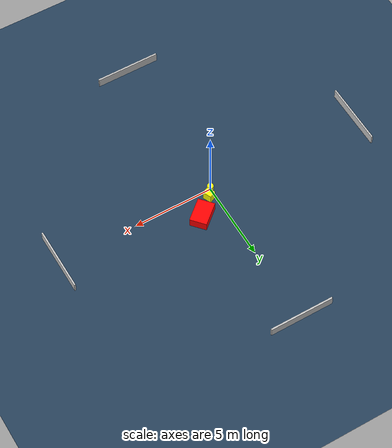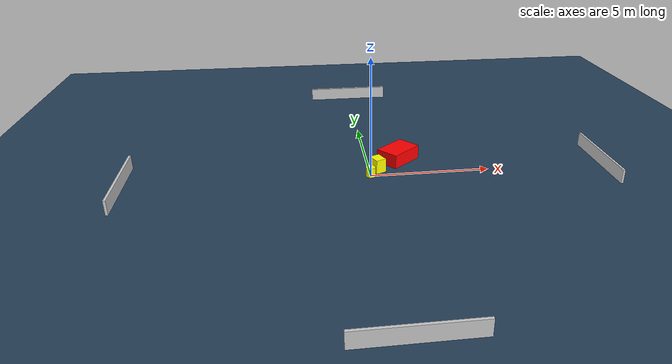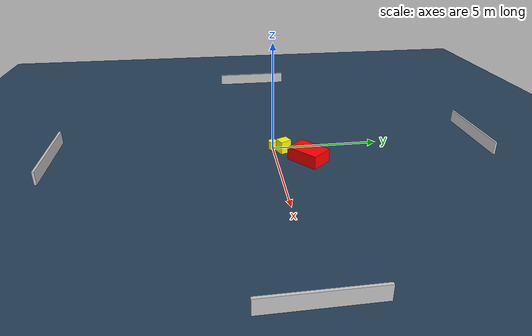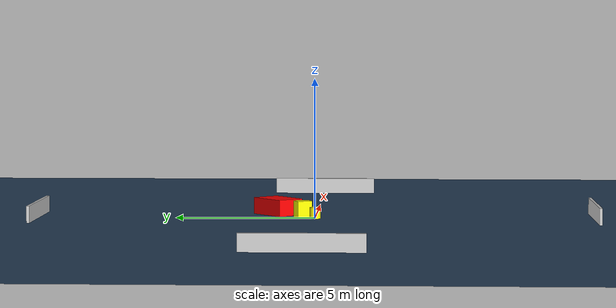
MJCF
<?xml version="1.0" ?>
<mujoco model="generated_environment">
  <option timestep="0.01" integrator="RK4" cone="elliptic"/>
  <default>
    <geom density="1"/>
  </default>
  <asset>
    <texture builtin="gradient" height="3072" name="skybox" rgb1="0.3 0.5 0.7" rgb2="0 0 0" type="skybox" width="512"/>
    <texture builtin="checker" height="300" name="groundplane" rgb1="0.2 0.3 0.4" rgb2="0.1 0.2 0.3" type="2d" width="300"/>
    <material name="groundplane" reflectance="0.2" texrepeat="5 5" texture="groundplane"/>
  </asset>
  <worldbody>
    <light dir="0 0 -1" directional="true" pos="0 0 1.5"/>
    <geom condim="3" friction="0.5 0.005 0.001" material="groundplane" name="floor" pos="0 0 0" size="0 0 0.05" type="plane"/>
    <body name="walls">
      <geom name="wall_1" condim="4" pos="-10.0 0.0 0.3" rgba="0.800000011920929 0.800000011920929 0.800000011920929 1.0" size="0.05 2.0 0.3" type="box"/>
      <geom name="wall_2" condim="4" pos="10.0 0.0 0.3" rgba="0.800000011920929 0.800000011920929 0.800000011920929 1.0" size="0.05 2.0 0.3" type="box"/>
      <geom name="wall_3" condim="4" pos="0.0 -10.0 0.3" rgba="0.800000011920929 0.800000011920929 0.800000011920929 1.0" size="2.0 0.05 0.3" type="box"/>
      <geom name="wall_4" condim="4" pos="0.0 10.0 0.3" rgba="0.800000011920929 0.800000011920929 0.800000011920929 1.0" size="2.0 0.05 0.3" type="box"/>
    </body>
    <body name="robot">
      <joint name="joint_x" type="slide" pos="0 0 0" axis="1 0 0"/>
      <joint name="joint_y" type="slide" pos="0 0 0" axis="0 1 0"/>
      <geom name="robot" type="cylinder" pos="0.0 0.0 0.2" size="0.2 0.2 0.0" mass="5.0" friction="1.0 0.005 0.0001" condim="4" rgba="1.0 1.0 0.0 1.0"/>
    </body>
    <body name="obstacle_1_movable">
      <geom name="obstacle_1_movable" condim="4" pos="0.3561630224881356 0.45779667982009986 0.3" euler="0 0 25.215101267088436" friction="0.0 0.005 0.001" rgba="1.0 1.0 0.0 1.0" size="0.2275323102781986 0.27505373804212424 0.3" type="box" mass="0.1"/>
      <joint type="free"/>
    </body>
    <body name="obstacle_2_static">
      <geom name="obstacle_2_static" condim="4" pos="1.3744633867981861 1.409159628612734 0.3" euler="0 0 310.697078848324" friction="0.0 0.005 0.001" rgba="1.0 0.0 0.0 1.0" size="0.5229149445296529 0.7665261316492251 0.3" type="box"/>
    </body>
  </worldbody>
  <actuator>
    <motor name="actuator_x" joint="joint_x" gear="1" ctrlrange="-1 1"/>
    <motor name="actuator_y" joint="joint_y" gear="1" ctrlrange="-1 1"/>
  </actuator>
</mujoco>
